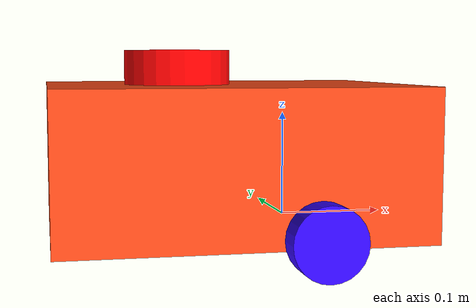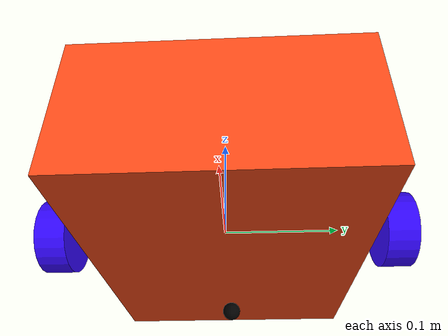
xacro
<?xml version='1.0'?>
<robot name ='demo_bot' xmlns:xacro="http://www.ros.org/wiki/xacro">

    <xacro:include filename="robot_core.xacro"/>
    <xacro:include filename="ros2_control.xacro"/>
    <xacro:include filename="lidar.xacro"/>
    <xacro:include filename="depth_camera.xacro"/>

</robot>

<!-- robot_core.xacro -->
<robot xmlns:xacro="http://www.ros.org/wiki/xacro">

    <!-- Including packages -->
    <xacro:include filename="color_macro.xacro"/>
    <xacro:include filename="robot_dim.xacro"/>
    <xacro:include filename="inertial_macro.xacro"/>
    <xacro:include filename="gazebo_demo.xacro"/>

    <!-- Base -->

    <link name="base_link">
    </link>

    <joint name="base_footprint_joint" type="fixed">
        <parent link="base_link"/>
        <child link="base_footprint"/>
        <origin xyz="0 0 0" rpy="0 0 0"/>
    </joint>

    <link name="base_footprint">
    </link>

    <!-- Chassis -->

    <joint name="chassis_joint" type="fixed">
    <parent link='base_link'/>
    <child link='chassis'/>
    <origin xyz="${-wheel_offset_x} 0 ${-wheel_offset_z}" rpy="0 0 0"/>
    </joint>

    <link name='chassis'>
        <visual>
            <origin xyz='${chassis_length/2} 0 ${chassis_height/2}'/>
            <geometry>
                <box size='${chassis_length} ${chassis_width} ${chassis_height}'/>
            </geometry>
            <material name='orange'/>
        </visual>
        <collision>
            <origin xyz='${chassis_length/2} 0 ${chassis_height/2}'/>
            <geometry>
                <box size='${chassis_length} ${chassis_width} ${chassis_height}'/>
            </geometry>
        </collision>
        <xacro:inertial_box mass='0.5' x='${chassis_length}' y='${chassis_width}' z='${chassis_height}'>
            <origin xyz='${chassis_length/2} 0 ${chassis_height/2}' rpy='0 0 0'/>
        </xacro:inertial_box>
    </link>

    <!-- Driving Wheels -->

    <joint name="left_wheel_joint" type="continuous">
        <parent link="base_link"/>
        <child link="left_wheel"/>
        <origin xyz="0 ${wheel_offset_y} 0" rpy="-${pi/2} 0 0"/>
        <axis xyz="0 0 1"/>
    </joint>

    <link name="left_wheel">
        <visual>
            <geometry>
                <cylinder radius="${wheel_radius}" length="${wheel_thickness}"/>
            </geometry>
            <material name='blue'/>
        </visual>
        <collision>
            <geometry>
                <sphere radius="${wheel_radius}"/>
            </geometry>
        </collision>
        <xacro:inertial_cylinder mass='${wheel_mass}' length='${wheel_thickness}' radius='${wheel_radius}'>
            <origin xyz="0 0 0" rpy="0 0 0"/>
        </xacro:inertial_cylinder>
    </link>

    <joint name="right_wheel_joint" type="continuous">
        <parent link="base_link"/>
        <child link="right_wheel"/>
        <origin xyz="0 ${-wheel_offset_y} 0" rpy="${pi/2} 0 0"/>
        <axis xyz="0 0 -1"/>
    </joint>

    <link name="right_wheel">
        <visual>
            <geometry>
                <cylinder radius="${wheel_radius}" length="${wheel_thickness}"/>
            </geometry>
            <material name='blue'/>
        </visual>
        <collision>
            <geometry>
                <sphere radius="${wheel_radius}"/>
            </geometry>
        </collision>
        <xacro:inertial_cylinder mass='${wheel_mass}' length='${wheel_thickness}' radius='${wheel_radius}'>
            <origin xyz="0 0 0" rpy="0 0 0"/>
        </xacro:inertial_cylinder>
    </link>

    <!-- Caster Wheel -->

    <joint name="caster_wheel_joint" type="continuous">
        <parent link="chassis"/>
        <child link="caster_wheel"/>
        <origin xyz="${caster_wheel_offset_x} 0 ${caster_wheel_offset_z}" rpy="0 0 0"/>
    </joint>

    <link name="caster_wheel">
        <visual>
            <geometry>
                <sphere radius="${caster_wheel_radius}"/>
            </geometry>
            <material name='black'/>
        </visual>
        <collision>
            <geometry>
                <sphere radius="${caster_wheel_radius}"/>
            </geometry>
        </collision>
        <xacro:inertial_sphere mass='${caster_wheel_mass}' radius='${caster_wheel_radius}'>
            <origin xyz='0 0 0' rpy='0 0 0'/>
        </xacro:inertial_sphere>
    </link>

</robot>

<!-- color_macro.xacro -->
<robot xmlns:xacro="http://www.ros.org/wiki/xacro">

    <!-- Init colors -->
     <material name="white">
        <color rgba="1 1 1 1"/>
     </material>

     <material name='orange'>
        <color rgba="1 0.3 0.1 1"/>
     </material>

     <material name='blue'>
        <color rgba="0.2 0.02 1 1"/>
     </material>

     <material name="black">
        <color rgba="0 0 0 1"/>
     </material>

     <material name="red">
      <color rgba="1 0 0 1"/>
     </material>

</robot>

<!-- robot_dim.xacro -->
<robot xmlns:xacro="http://www.ros.org/wiki/xacro">
    <!-- This file contains the dimensions used to define the demoBot -->

    <!-- Chassis dimensions -->
    <xacro:property name="chassis_length" value="0.335"/>
    <xacro:property name="chassis_width" value="0.265"/>
    <xacro:property name="chassis_height" value="0.138"/>
    <xacro:property name="chassis_mass" value="1.0"/>

    <!-- Driving Wheel dimensions -->
    <xacro:property name="wheel_radius" value="0.033"/>
    <xacro:property name="wheel_thickness" value="0.026"/>
    <xacro:property name="wheel_mass" value="0.05"/>
    <xacro:property name="wheel_offset_x" value="0.226"/>
    <xacro:property name="wheel_offset_y" value="0.1485"/>
    <xacro:property name="wheel_offset_z" value="0.01"/>

    <!-- Caster Wheel dimensions -->
    <xacro:property name="caster_wheel_radius" value="0.01"/>
    <xacro:property name="caster_wheel_mass" value="0.01"/>
    <xacro:property name="caster_wheel_offset_x" value="0.075"/>
    <xacro:property name="caster_wheel_offset_z" value="${(wheel_offset_z - wheel_radius + caster_wheel_radius)}"/>

</robot>

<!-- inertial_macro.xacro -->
<robot xmlns:xacro="http://www.ros.org/wiki/xacro">

    <!-- Specifying standard inertial macros-->

    <xacro:macro name="inertial_sphere" params="mass radius *origin">
        <inertial>
            <xacro:insert_block name="origin"/>
            <mass value="${mass}"/>
            <inertia ixx="${(2/5) * mass * (radius*radius)}" ixy="0.0" ixz="0.0"
                     iyy="${(2/5) * mass * (radius*radius)}" iyz="0.0"
                     izz="${(2/5) * mass * (radius*radius)}"/>
        </inertial>
    </xacro:macro>

    <xacro:macro name='inertial_box' params='mass x y z *origin'>
        <inertial>
            <xacro:insert_block name="origin"/>
            <mass value="${mass}"/>
            <inertia ixx="${(1/12) * mass * ((y*y) + (z*z))}" ixy="0.0" ixz="0.0"
                 iyy="${(1/12) * mass * ((x*x) + (z*z))}" iyz="0.0"
                 izz="${(1/12) * mass * ((y*y) + (x*x))}"/>
        </inertial>
    </xacro:macro>

    <xacro:macro name='inertial_cylinder' params='mass length radius *origin'>
        <inertial>
            <xacro:insert_block name="origin"/>
            <mass value='${mass}'/>
            <inertia ixx="${(1/12) * mass * (3*radius*radius + length*length)}" ixy="0.0" ixz="0.0"
                     iyy="${(1/12) * mass * (3*radius*radius + length*length)}" iyz="0.0"
                     izz="${(1/2) * mass * (radius*radius)}"/>
        </inertial>
    </xacro:macro>

</robot>

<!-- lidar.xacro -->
<robot xmlns:xacro="http://www.ros.org/wiki/xacro">

    <joint name="laser_joint" type="fixed">
        <parent link="chassis"/>
        <child link="laser_frame"/>
        <origin xyz="0.122 0 0.15" rpy="0 0 0"/>
    </joint>

    <link name="laser_frame">
         <visual>
            <geometry>
                <cylinder radius="0.05" length="0.04"/>
            </geometry>
            <material name='red'/>
        </visual>
        <collision>
            <geometry>
                <sphere radius="0.05"/>
            </geometry>
        </collision>
        <xacro:inertial_cylinder mass='0.1' length='0.04' radius='0.05'>
            <origin xyz="0 0 0" rpy="0 0 0"/>
        </xacro:inertial_cylinder>
    </link>

    <gazebo reference="laser_frame">
        <sensor name="laser" type="gpu_lidar">
            <pose>0 0 0 0 0 0</pose>
            <topic>scan</topic>
            <gz_frame_id>laser_frame</gz_frame_id>
            <visualize>true</visualize>
            <update_rate>5</update_rate>
            <lidar>
                <scan>
                    <horizontal>
                        <samples>180</samples>
                        <resolution>1</resolution>
                        <min_angle>-3.14</min_angle>
                        <max_angle>3.14</max_angle>
                    </horizontal>
                </scan>
                <range>
                    <min>0.3</min>
                    <max>12</max>
                    <resolution>0.01</resolution>
                </range>
            </lidar>
        </sensor>
    </gazebo>

</robot>

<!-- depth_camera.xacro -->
<robot xmlns:xacro="http://www.ros.org/wiki/xacro">

    <joint name='camera_joint' type='fixed'>
        <parent link="chassis"/>
        <child link='camera_link'/>
        <origin xyz='0.305 0  0.08' rpy='0 0 0'/>
    </joint>

    <link name="camera_link">
        <visual>
            <geometry>
                <box size="0.010 0.03 0.03"/>
            </geometry>
            <material name='red'/>
        </visual>
    </link>

    <joint name="camera_optical_joint" type="fixed">
        <parent link="camera_link"/>
        <child link="camera_optical_link"/>
        <origin xyz="0 0 0" rpy="${-pi/2} 0 ${-pi/2}"/>
    </joint>

    <link name="camera_optical_link"/>

    <gazebo reference="camera_link">
        <material>
            <ambient>0.05 0.05 0.05 1</ambient>
            <diffuse>0.05 0.05 0.05 1</diffuse>
        </material>

        <sensor name="camera" type="rgbd_camera">
            <pose>0 0 0 0 0 0</pose>
            <topic>camera</topic>
            <gz_frame_id>camera_link</gz_frame_id>
            <visualize>true</visualize>
            <update_rate>10</update_rate>
            <always_on>true</always_on>

            <camera>
                <camera_info_topic>/camera/camera_info</camera_info_topic>
                <horizontal_fov>1.089</horizontal_fov>
                <image>
                    <format>R8G8B8</format>
                    <width>640</width>
                    <height>480</height>
                </image>
                <clip>
                    <near>0.05</near>
                    <far>8.0</far>
                </clip>
            </camera>
        </sensor>
    </gazebo>

</robot>
